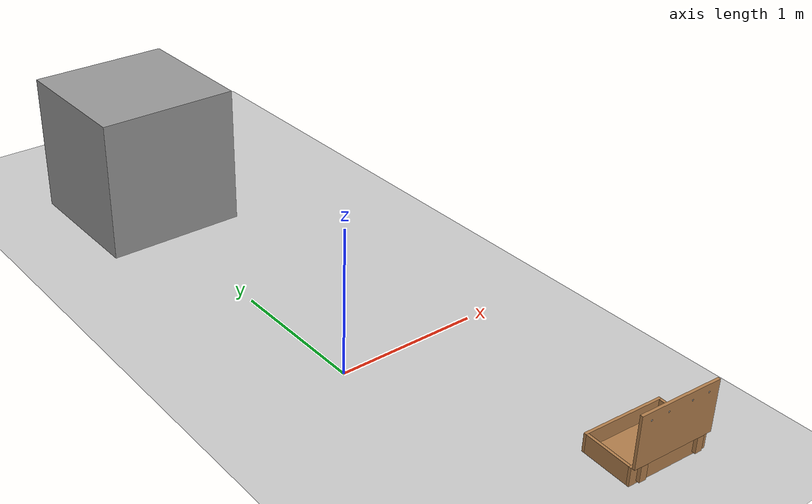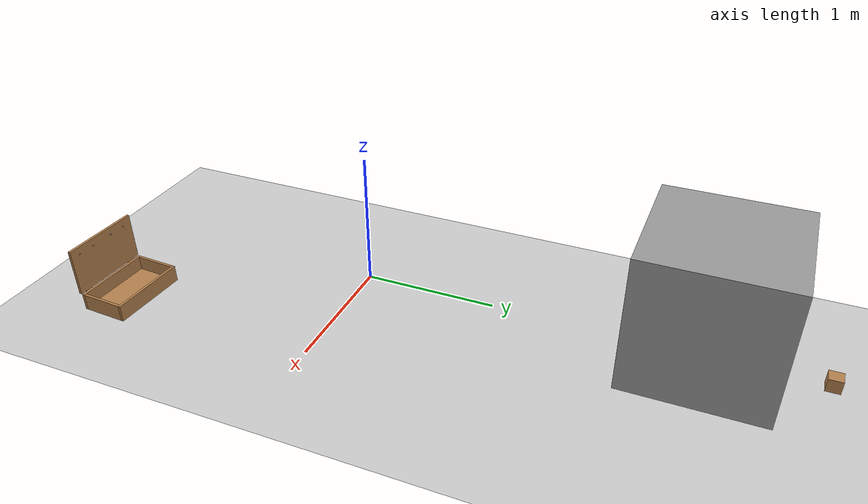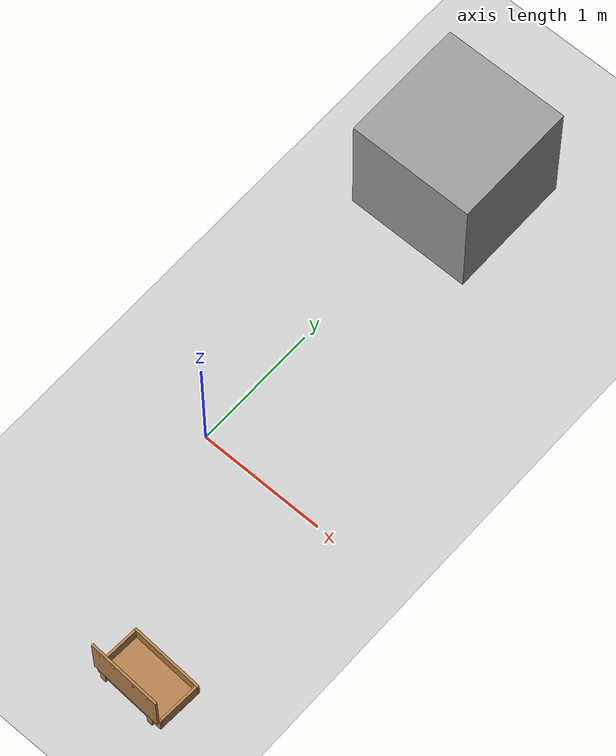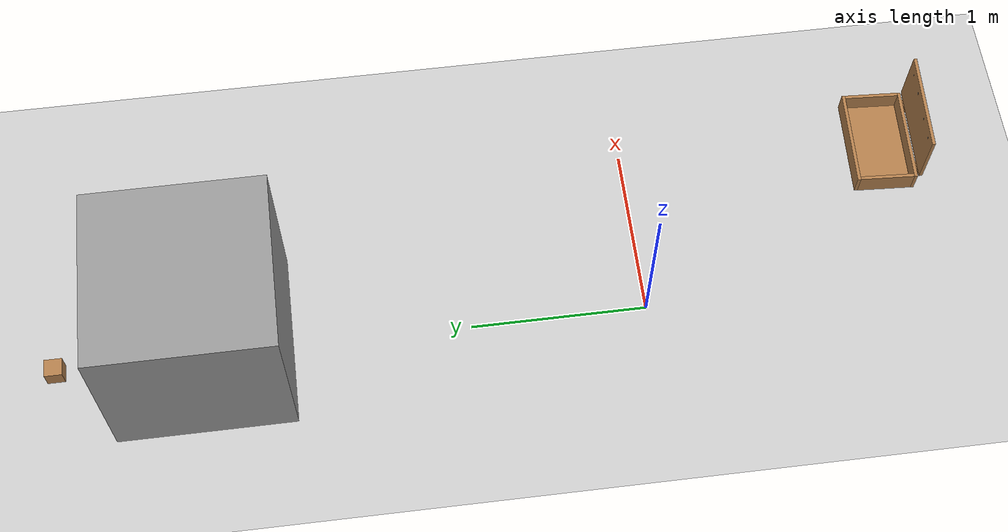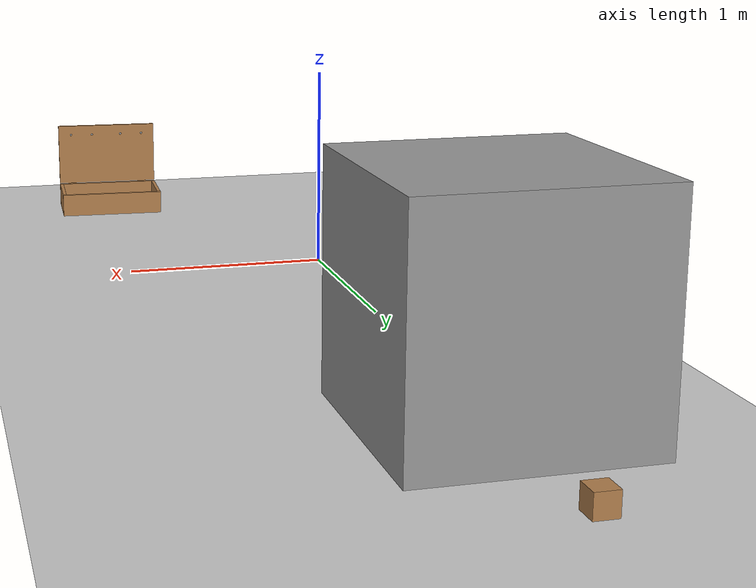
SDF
<sdf version="1.6">
 <world name="default">
  <light name="sun" type="directional">
   <pose>0 0 10 0 -0 0</pose>
   <diffuse>0.8 0.8 0.8 1</diffuse>
   <specular>0.1 0.1 0.1 1</specular>
   <attenuation>
    <range>1000</range>
    <constant>0.9</constant>
    <linear>0.01</linear>
    <quadratic>0.001</quadratic>
   </attenuation>
   <direction>-0.5 0.5 -1</direction>
  </light>
  <model name="ground_plane">
   <static>1</static>
   <link name="link">
    <collision name="collision">
     <geometry><plane><normal>0 0 1</normal><size>100 100</size></plane></geometry>
     <surface><friction><ode><mu>100</mu><mu2>50</mu2></ode></friction></surface>
    </collision>
    <visual name="visual">
     <cast_shadows>0</cast_shadows>
     <geometry><plane><normal>0 0 1</normal><size>100 100</size></plane></geometry>
     <material>
      <script><uri>file://media/materials/scripts/gazebo.material</uri><name>Gazebo/Grey</name></script>
     </material>
    </visual>
   </link>
  </model>
  <gravity>0 0 -9.8</gravity>
  <magnetic_field>6e-06 2.3e-05 -4.2e-05</magnetic_field>
  <atmosphere type="adiabatic"/>
  <physics name="default_physics" default="0" type="ode">
   <max_step_size>0.001</max_step_size>
   <real_time_factor>1</real_time_factor>
   <real_time_update_rate>1000</real_time_update_rate>
  </physics>
  <scene><ambient>0.4 0.4 0.4 1</ambient><background>0.7 0.7 0.7 1</background><shadows>1</shadows></scene>
  <spherical_coordinates>
   <surface_model>EARTH_WGS84</surface_model>
   <latitude_deg>0</latitude_deg>
   <longitude_deg>0</longitude_deg>
   <elevation>0</elevation>
   <heading_deg>0</heading_deg>
  </spherical_coordinates>
  <model name="unit_box_0">
   <pose>0.045558 2.51647 0.5 0 -0 0.001526</pose>
   <link name="link">
    <inertial>
     <mass>1</mass>
     <inertia>
      <ixx>0.166667</ixx>
      <ixy>0</ixy>
      <ixz>0</ixz>
      <iyy>0.166667</iyy>
      <iyz>0</iyz>
      <izz>0.166667</izz>
     </inertia>
    </inertial>
    <collision name="collision"><geometry><box><size>1 1 1</size></box></geometry></collision>
    <visual name="visual">
     <geometry><box><size>1 1 1</size></box></geometry>
     <material>
      <script><name>Gazebo/Grey</name><uri>file://media/materials/scripts/gazebo.material</uri></script>
     </material>
    </visual>
   </link>
  </model>
  <model name="wooden_case_0">
   <link name="base">
    <pose>0 0 0.024 0 -0 0</pose>
    <inertial>
     <pose>-0.022184 0 0.171592 0 -0 0</pose>
     <mass>3.96264</mass>
     <inertia>
      <ixx>0.213536</ixx>
      <ixy>0</ixy>
      <ixz>0.000779377</ixz>
      <iyy>0.0708943</iyy>
      <iyz>0</iyz>
      <izz>0.154604</izz>
     </inertia>
    </inertial>
    <collision name="collision_back">
     <pose>-0.053975 0 0.1778 0 -0 0</pose>
     <geometry><box><size>0.01905 0.5461 0.3175</size></box></geometry>
     <surface>
      <contact>
       <poissons_ratio>0.347</poissons_ratio>
       <elastic_modulus>8.8e+09</elastic_modulus>
       <ode><kp>100000</kp><kd>100</kd><max_vel>100</max_vel><min_depth>0.001</min_depth></ode>
      </contact>
      <friction>
       <torsional>
        <coefficient>1</coefficient>
        <use_patch_radius>0</use_patch_radius>
        <surface_radius>0.01</surface_radius>
       </torsional>
      </friction>
     </surface>
    </collision>
    <visual name="visual_back">
     <pose>-0.053975 0 0.1778 0 -0 0</pose>
     <geometry><box><size>0.01905 0.5461 0.3175</size></box></geometry>
     <material>
      <script><uri>file://media/materials/scripts/gazebo.material</uri><name>Gazebo/Wood</name></script>
     </material>
    </visual>
    <collision name="collision_bottom">
     <pose>0 0 0.009525 0 -0 0</pose>
     <geometry><box><size>0.127 0.5842 0.01905</size></box></geometry>
     <surface>
      <contact>
       <poissons_ratio>0.347</poissons_ratio>
       <elastic_modulus>8.8e+09</elastic_modulus>
       <ode><kp>100000</kp><kd>100</kd><max_vel>100</max_vel><min_depth>0.001</min_depth></ode>
      </contact>
      <friction>
       <torsional>
        <coefficient>1</coefficient>
        <use_patch_radius>0</use_patch_radius>
        <surface_radius>0.01</surface_radius>
       </torsional>
      </friction>
     </surface>
    </collision>
    <visual name="visual_bottom">
     <pose>0 0 0.009525 0 -0 0</pose>
     <geometry><box><size>0.127 0.5842 0.01905</size></box></geometry>
     <material>
      <script><uri>file://media/materials/scripts/gazebo.material</uri><name>Gazebo/Wood</name></script>
     </material>
    </visual>
    <collision name="collision_top">
     <pose>0 0 0.346075 0 -0 0</pose>
     <geometry><box><size>0.127 0.5842 0.01905</size></box></geometry>
     <surface>
      <contact>
       <poissons_ratio>0.347</poissons_ratio>
       <elastic_modulus>8.8e+09</elastic_modulus>
       <ode><kp>100000</kp><kd>100</kd><max_vel>100</max_vel><min_depth>0.001</min_depth></ode>
      </contact>
      <friction>
       <torsional>
        <coefficient>1</coefficient>
        <use_patch_radius>0</use_patch_radius>
        <surface_radius>0.01</surface_radius>
       </torsional>
      </friction>
     </surface>
    </collision>
    <visual name="visual_top">
     <pose>0 0 0.346075 0 -0 0</pose>
     <geometry><box><size>0.127 0.5842 0.01905</size></box></geometry>
     <material>
      <script><uri>file://media/materials/scripts/gazebo.material</uri><name>Gazebo/Wood</name></script>
     </material>
    </visual>
    <collision name="collision_left">
     <pose>0 -0.282575 0.1778 0 -0 0</pose>
     <geometry><box><size>0.127 0.01905 0.3175</size></box></geometry>
     <surface>
      <contact>
       <poissons_ratio>0.347</poissons_ratio>
       <elastic_modulus>8.8e+09</elastic_modulus>
       <ode><kp>100000</kp><kd>100</kd><max_vel>100</max_vel><min_depth>0.001</min_depth></ode>
      </contact>
      <friction>
       <torsional>
        <coefficient>1</coefficient>
        <use_patch_radius>0</use_patch_radius>
        <surface_radius>0.01</surface_radius>
       </torsional>
      </friction>
     </surface>
    </collision>
    <visual name="visual_left">
     <pose>0 -0.282575 0.1778 0 -0 0</pose>
     <geometry><box><size>0.127 0.01905 0.3175</size></box></geometry>
     <material>
      <script><uri>file://media/materials/scripts/gazebo.material</uri><name>Gazebo/Wood</name></script>
     </material>
    </visual>
    <collision name="collision_right">
     <pose>0 0.282575 0.1778 0 -0 0</pose>
     <geometry><box><size>0.127 0.01905 0.3175</size></box></geometry>
     <surface>
      <contact>
       <poissons_ratio>0.347</poissons_ratio>
       <elastic_modulus>8.8e+09</elastic_modulus>
       <ode><kp>100000</kp><kd>100</kd><max_vel>100</max_vel><min_depth>0.001</min_depth></ode>
      </contact>
      <friction>
       <torsional>
        <coefficient>1</coefficient>
        <use_patch_radius>0</use_patch_radius>
        <surface_radius>0.01</surface_radius>
       </torsional>
      </friction>
     </surface>
    </collision>
    <visual name="visual_right">
     <pose>0 0.282575 0.1778 0 -0 0</pose>
     <geometry><box><size>0.127 0.01905 0.3175</size></box></geometry>
     <material>
      <script><uri>file://media/materials/scripts/gazebo.material</uri><name>Gazebo/Wood</name></script>
     </material>
    </visual>
    <collision name="collision_block_left">
     <pose>0.0095 -0.2151 -0.012 0 -0 0</pose>
     <geometry><box><size>0.108 0.05 0.024</size></box></geometry>
     <surface>
      <contact>
       <poissons_ratio>0.347</poissons_ratio>
       <elastic_modulus>8.8e+09</elastic_modulus>
       <ode><kp>100000</kp><kd>100</kd><max_vel>100</max_vel><min_depth>0.001</min_depth></ode>
      </contact>
      <friction>
       <torsional>
        <coefficient>1</coefficient>
        <use_patch_radius>0</use_patch_radius>
        <surface_radius>0.01</surface_radius>
       </torsional>
      </friction>
     </surface>
    </collision>
    <visual name="visual_block_left">
     <pose>0.0095 -0.2151 -0.012 0 -0 0</pose>
     <geometry><box><size>0.108 0.05 0.024</size></box></geometry>
     <material>
      <script><uri>file://media/materials/scripts/gazebo.material</uri><name>Gazebo/Wood</name></script>
     </material>
    </visual>
    <collision name="collision_block_right">
     <pose>0.0095 0.2151 -0.012 0 -0 0</pose>
     <geometry><box><size>0.108 0.05 0.024</size></box></geometry>
     <surface>
      <contact>
       <poissons_ratio>0.347</poissons_ratio>
       <elastic_modulus>8.8e+09</elastic_modulus>
       <ode><kp>100000</kp><kd>100</kd><max_vel>100</max_vel><min_depth>0.001</min_depth></ode>
      </contact>
      <friction>
       <torsional>
        <coefficient>1</coefficient>
        <use_patch_radius>0</use_patch_radius>
        <surface_radius>0.01</surface_radius>
       </torsional>
      </friction>
     </surface>
    </collision>
    <visual name="visual_block_right">
     <pose>0.0095 0.2151 -0.012 0 -0 0</pose>
     <geometry><box><size>0.108 0.05 0.024</size></box></geometry>
     <material>
      <script><uri>file://media/materials/scripts/gazebo.material</uri><name>Gazebo/Wood</name></script>
     </material>
    </visual>
   </link>
   <link name="lid">
    <pose>0.243775 0 0.009525 0 -0 0</pose>
    <inertial>
     <mass>1.97874</mass>
     <inertia>
      <ixx>0.0563367</ixx>
      <ixy>0</ixy>
      <ixz>0</ixz>
      <iyy>0.020911</iyy>
      <iyz>0</iyz>
      <izz>0.0771281</izz>
     </inertia>
    </inertial>
    <collision name="collision">
     <geometry><box><size>0.3556 0.5842 0.01905</size></box></geometry>
     <surface>
      <contact>
       <poissons_ratio>0.347</poissons_ratio>
       <elastic_modulus>8.8e+09</elastic_modulus>
       <ode><kp>100000</kp><kd>100</kd><max_vel>100</max_vel><min_depth>0.001</min_depth></ode>
      </contact>
      <friction>
       <torsional>
        <coefficient>1</coefficient>
        <use_patch_radius>0</use_patch_radius>
        <surface_radius>0.01</surface_radius>
       </torsional>
      </friction>
     </surface>
    </collision>
    <visual name="visual">
     <geometry><box><size>0.3556 0.5842 0.01905</size></box></geometry>
     <material>
      <script><uri>file://media/materials/scripts/gazebo.material</uri><name>Gazebo/Wood</name></script>
     </material>
    </visual>
    <visual name="tee_nut_1">
     <pose>0.122 -0.216 0 0 -0 0</pose>
     <geometry><cylinder><radius>0.00635</radius><length>0.0192405</length></cylinder></geometry>
     <material>
      <script><uri>file://media/materials/scripts/gazebo.material</uri><name>Gazebo/Grey</name></script>
     </material>
    </visual>
    <visual name="tee_nut_2">
     <pose>0.122 -0.088 0 0 -0 0</pose>
     <geometry><cylinder><radius>0.00635</radius><length>0.0192405</length></cylinder></geometry>
     <material>
      <script><uri>file://media/materials/scripts/gazebo.material</uri><name>Gazebo/Grey</name></script>
     </material>
    </visual>
    <visual name="tee_nut_3">
     <pose>0.122 0.088 0 0 -0 0</pose>
     <geometry><cylinder><radius>0.00635</radius><length>0.0192405</length></cylinder></geometry>
     <material>
      <script><uri>file://media/materials/scripts/gazebo.material</uri><name>Gazebo/Grey</name></script>
     </material>
    </visual>
    <visual name="tee_nut_4">
     <pose>0.122 0.216 0 0 -0 0</pose>
     <geometry><cylinder><radius>0.00635</radius><length>0.0192405</length></cylinder></geometry>
     <material>
      <script><uri>file://media/materials/scripts/gazebo.material</uri><name>Gazebo/Grey</name></script>
     </material>
    </visual>
   </link>
   <joint name="lid_hinge" type="revolute">
    <pose>-0.1778 0 0.01905 0 -0 0</pose>
    <parent>base</parent>
    <child>lid</child>
    <axis>
     <xyz>0 1 0</xyz>
     <limit><upper>0.523599</upper><lower>-1.5708</lower></limit>
     <use_parent_model_frame>0</use_parent_model_frame>
     <dynamics><spring_reference>0</spring_reference><spring_stiffness>0</spring_stiffness></dynamics>
    </axis>
   </joint>
   <pose>0.887322 -1.74973 0.062447 0.002379 -1.57069 -1.6265</pose>
  </model>
  <model name="wood_cube_10cm_0">
   <link name="link">
    <pose>0 0 0.05 0 -0 0</pose>
    <inertial>
     <mass>0.5167</mass>
     <inertia>
      <ixx>0.000861167</ixx>
      <ixy>0</ixy>
      <ixz>0</ixz>
      <iyy>0.000861167</iyy>
      <iyz>0</iyz>
      <izz>0.000861167</izz>
     </inertia>
    </inertial>
    <collision name="collision">
     <geometry><box><size>0.1 0.1 0.1</size></box></geometry>
     <surface>
      <contact>
       <poissons_ratio>0.347</poissons_ratio>
       <elastic_modulus>8.8e+09</elastic_modulus>
       <ode><kp>100000</kp><kd>100</kd><max_vel>100</max_vel><min_depth>0.001</min_depth></ode>
      </contact>
      <friction>
       <torsional>
        <coefficient>1</coefficient>
        <use_patch_radius>0</use_patch_radius>
        <surface_radius>0.01</surface_radius>
       </torsional>
      </friction>
     </surface>
    </collision>
    <visual name="visual">
     <geometry><box><size>0.1 0.1 0.1</size></box></geometry>
     <material>
      <script><uri>file://media/materials/scripts/gazebo.material</uri><name>Gazebo/Wood</name></script>
     </material>
    </visual>
   </link>
   <pose>-0.008633 3.34567 0 0 -0 0</pose>
  </model>
 </world>
</sdf>
